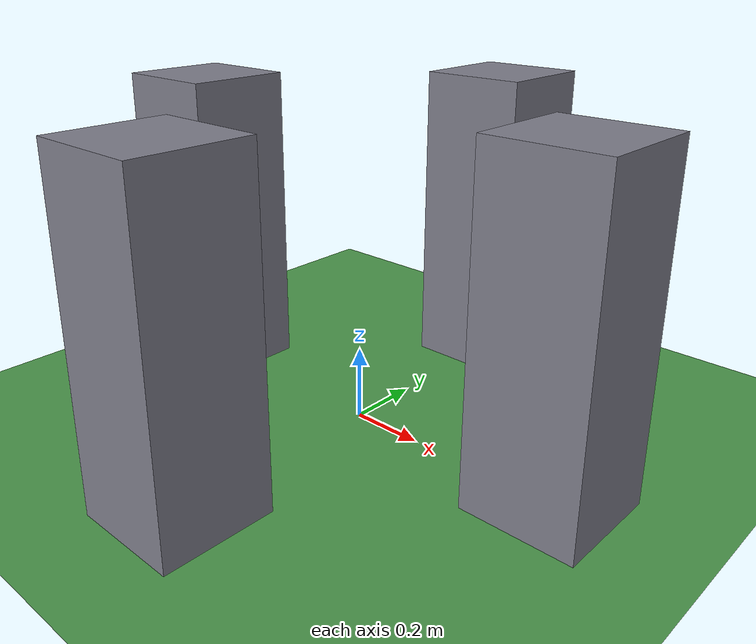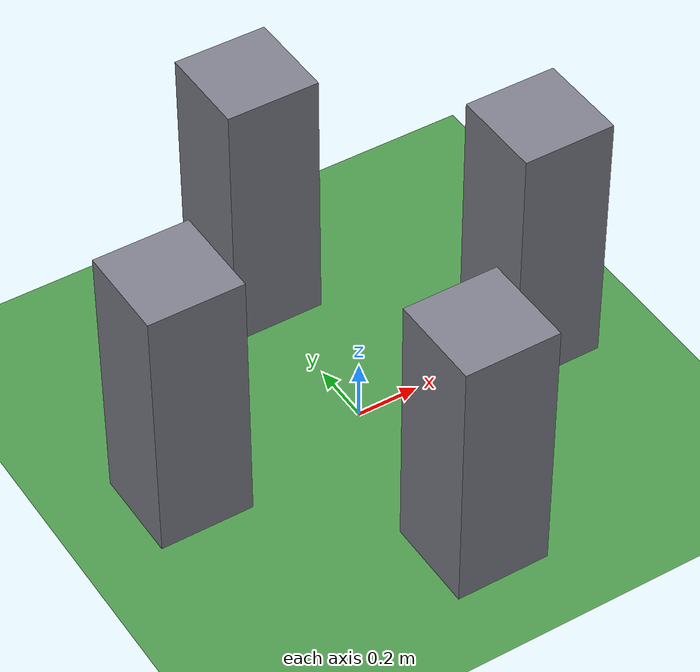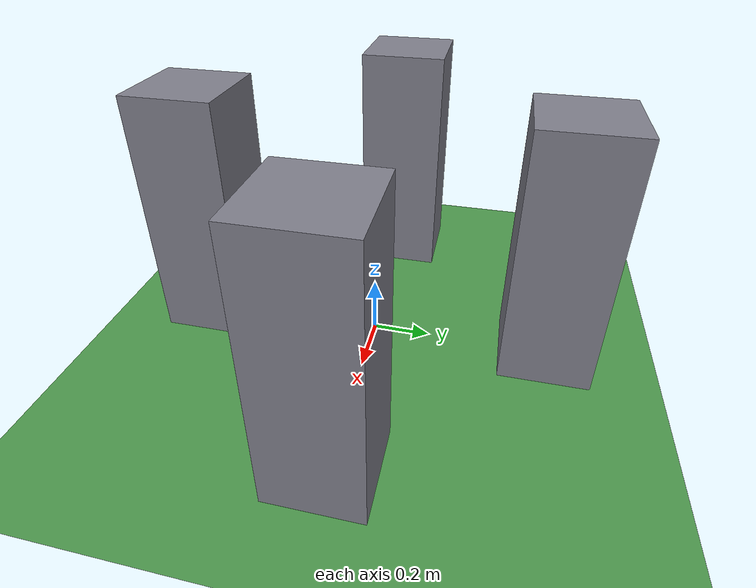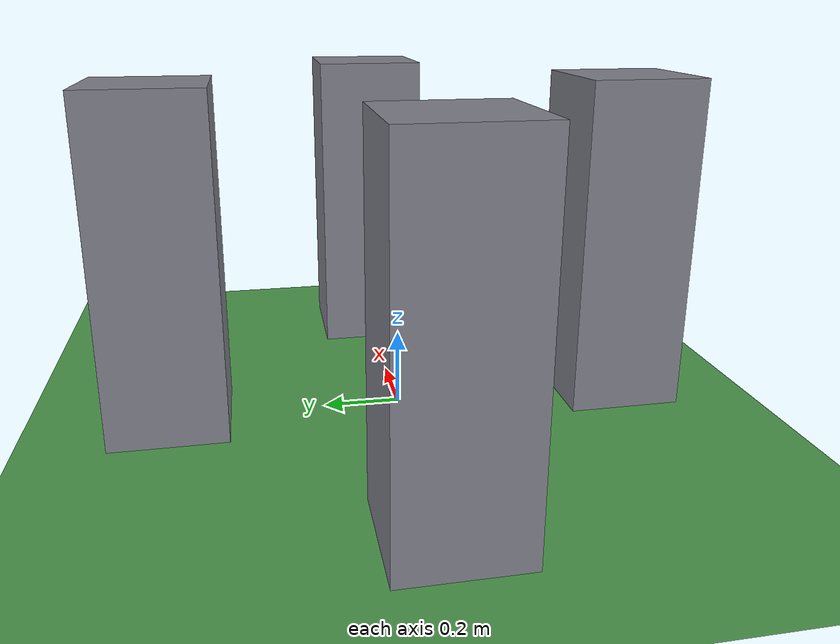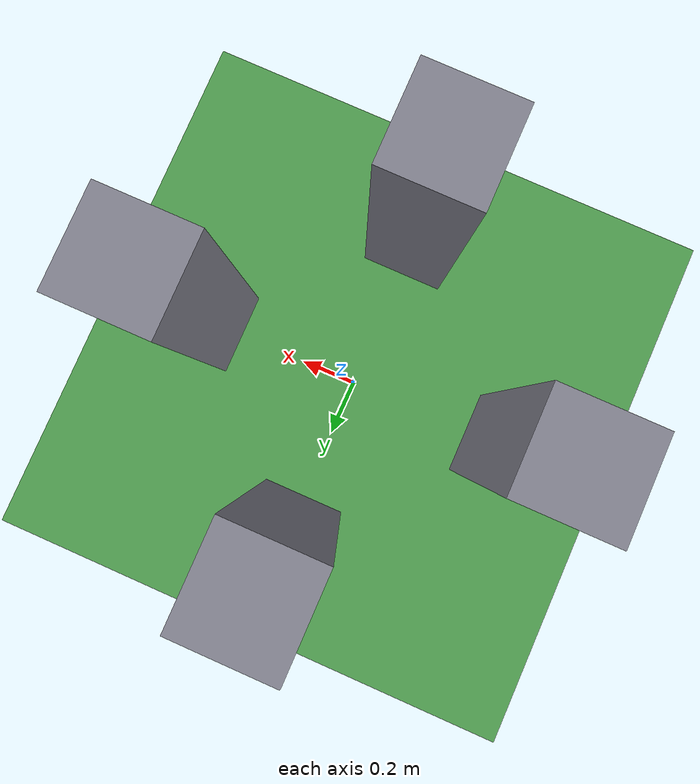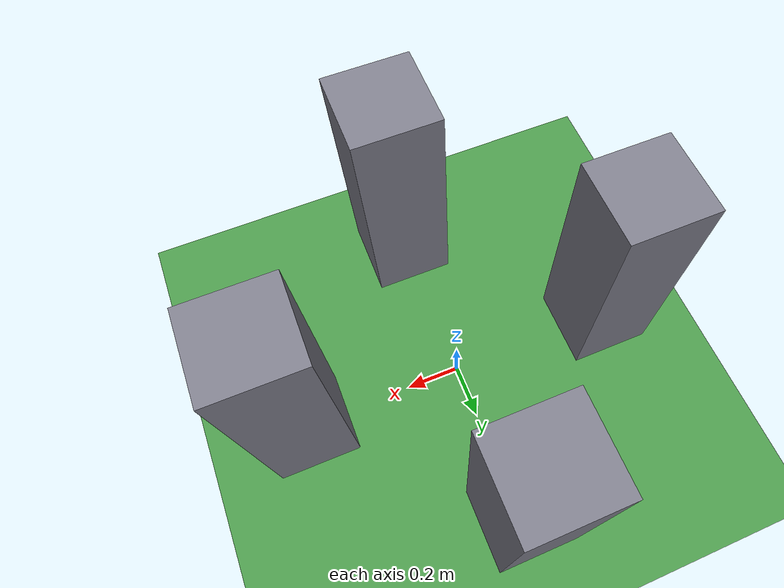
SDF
<sdf version="1.6">
 <world name="quadcopter">
  <physics name="1ms" type="ignored">
   <max_step_size>0.001</max_step_size>
   <real_time_factor>1.0</real_time_factor>
   <real_time_update_rate>500</real_time_update_rate>
  </physics>
  <plugin filename="ignition-gazebo-physics-system" name="gz::sim::systems::Physics"/>
  <plugin filename="ignition-gazebo-scene-broadcaster-system" name="gz::sim::systems::SceneBroadcaster"/>
  <plugin filename="ignition-gazebo-user-commands-system" name="gz::sim::systems::UserCommands"/>
  <plugin filename="gz-sim-sensors-system" name="gz::sim::systems::Sensors"/>
  <scene><background>0.6 0.8 1.0 1</background><ambient>0.5 0.5 0.5 1</ambient></scene>
  <light type="directional" name="sun">
   <pose>0 0 10 0 0 0</pose>
   <diffuse>0.8 0.8 0.8 1</diffuse>
   <specular>0.2 0.2 0.2 1</specular>
   <attenuation>
    <range>1000</range>
    <constant>0.9</constant>
    <linear>0.01</linear>
    <quadratic>0.001</quadratic>
   </attenuation>
   <direction>-0.5 0.1 -0.9</direction>
  </light>
  <model name="ground_plane">
   <static>true</static>
   <link name="link">
    <collision name="collision">
     <geometry><plane><normal>0 0 1</normal><size>100 100</size></plane></geometry>
    </collision>
    <visual name="visual">
     <geometry><plane><normal>0 0 1</normal><size>100 100</size></plane></geometry>
     <material>
      <ambient>0.2 0.5 0.2 1</ambient>
      <diffuse>0.3 0.6 0.3 1</diffuse>
      <specular>0.05 0.05 0.05 1</specular>
     </material>
    </visual>
   </link>
  </model>
  <model name="platform_0">
   <static>true</static>
   <pose>0.603553 0.000000 0.439277 0 0 0</pose>
   <link name="link">
    <collision name="c"><geometry><box><size>0.30 0.30 0.878553</size></box></geometry></collision>
    <visual name="v">
     <geometry><box><size>0.30 0.30 0.878553</size></box></geometry>
     <material><ambient>0.35 0.35 0.4 1</ambient><diffuse>0.5 0.5 0.55 1</diffuse></material>
    </visual>
   </link>
  </model>
  <model name="platform_1">
   <static>true</static>
   <pose>0.000000 0.603553 0.439277 0 0 0</pose>
   <link name="link">
    <collision name="c"><geometry><box><size>0.30 0.30 0.878553</size></box></geometry></collision>
    <visual name="v">
     <geometry><box><size>0.30 0.30 0.878553</size></box></geometry>
     <material><ambient>0.35 0.35 0.4 1</ambient><diffuse>0.5 0.5 0.55 1</diffuse></material>
    </visual>
   </link>
  </model>
  <model name="platform_2">
   <static>true</static>
   <pose>-0.603553 0.000000 0.439277 0 0 0</pose>
   <link name="link">
    <collision name="c"><geometry><box><size>0.30 0.30 0.878553</size></box></geometry></collision>
    <visual name="v">
     <geometry><box><size>0.30 0.30 0.878553</size></box></geometry>
     <material><ambient>0.35 0.35 0.4 1</ambient><diffuse>0.5 0.5 0.55 1</diffuse></material>
    </visual>
   </link>
  </model>
  <model name="platform_3">
   <static>true</static>
   <pose>-0.000000 -0.603553 0.439277 0 0 0</pose>
   <link name="link">
    <collision name="c"><geometry><box><size>0.30 0.30 0.878553</size></box></geometry></collision>
    <visual name="v">
     <geometry><box><size>0.30 0.30 0.878553</size></box></geometry>
     <material><ambient>0.35 0.35 0.4 1</ambient><diffuse>0.5 0.5 0.55 1</diffuse></material>
    </visual>
   </link>
  </model>
 </world>
</sdf>
